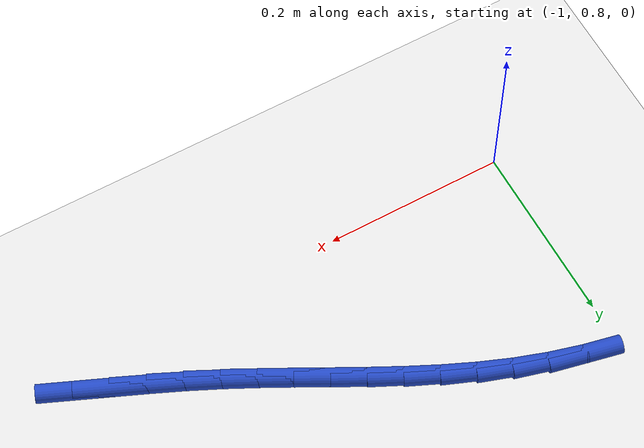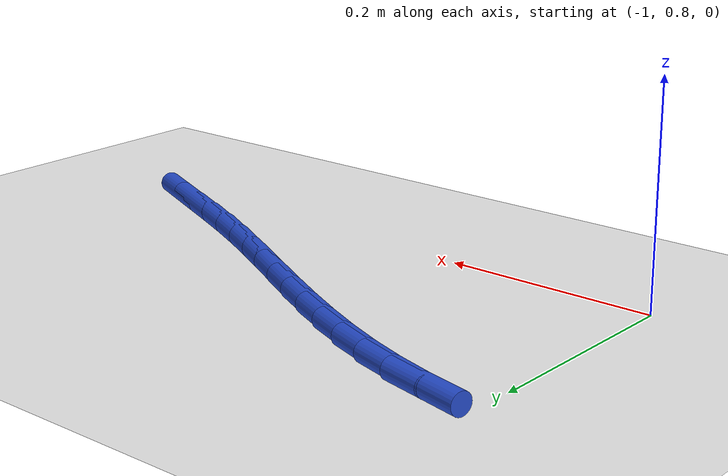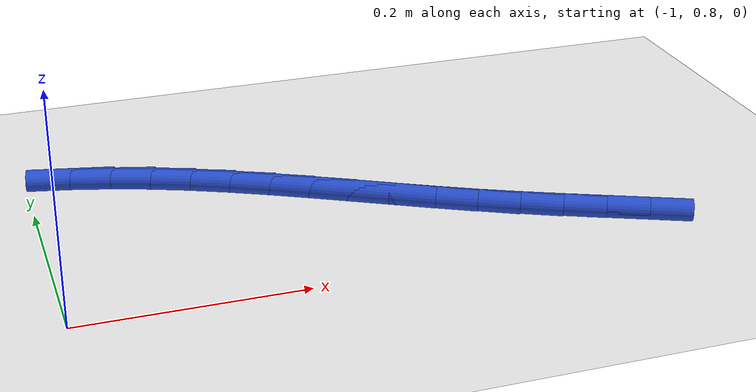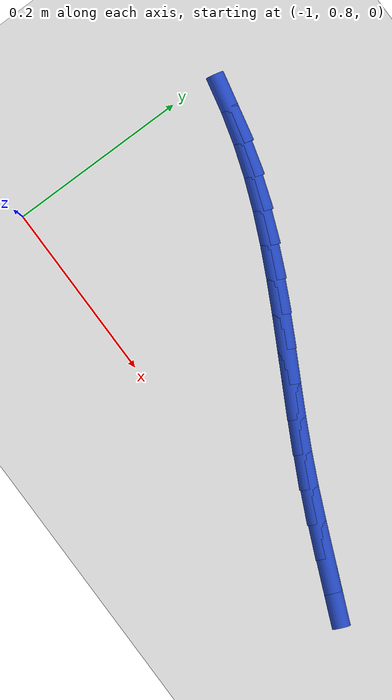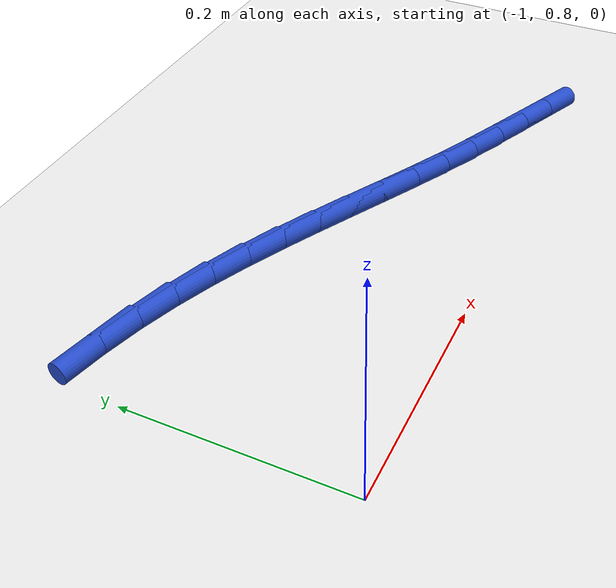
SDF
<sdf version="1.6">
 <world name="default">
  <model name="ground_plane">
   <static>1</static>
   <link name="link">
    <collision name="collision">
     <geometry><plane><normal>0 0 1</normal><size>100 100</size></plane></geometry>
     <surface><friction><ode><mu>100</mu><mu2>50</mu2></ode></friction></surface>
    </collision>
    <visual name="visual">
     <cast_shadows>0</cast_shadows>
     <geometry><plane><normal>0 0 1</normal><size>100 100</size></plane></geometry>
     <material>
      <script><uri>file://media/materials/scripts/gazebo.material</uri><name>Gazebo/WhiteGlow</name></script>
     </material>
    </visual>
   </link>
  </model>
  <model name="line">
   <link name="link_27">
    <pose>-0.48338921874957724 0.8272434487710636 0.01 0 1.57 -0.41203900918055797</pose>
    <collision name="collision">
     <geometry><cylinder><radius>0.01</radius><length>0.08</length></cylinder></geometry>
    </collision>
    <visual name="visual">
     <material>
      <script><name>Gazebo/Blue</name><uri>file://media/materials/scripts/gazebo.material</uri></script>
     </material>
     <geometry><cylinder><radius>0.01</radius><length>0.08</length></cylinder></geometry>
    </visual>
   </link>
   <link name="link_28">
    <pose>-0.5179843008508721 0.8423634904225151 0.01 0 1.57 -0.41233873418005973</pose>
    <collision name="collision">
     <geometry><cylinder><radius>0.01</radius><length>0.08</length></cylinder></geometry>
    </collision>
    <visual name="visual">
     <material>
      <script><name>Gazebo/Blue</name><uri>file://media/materials/scripts/gazebo.material</uri></script>
     </material>
     <geometry><cylinder><radius>0.01</radius><length>0.08</length></cylinder></geometry>
    </visual>
   </link>
   <link name="link_29">
    <pose>-0.5526401096222798 0.8575224461147751 0.01 0 1.57 -0.4245493605819563</pose>
    <collision name="collision">
     <geometry><cylinder><radius>0.01</radius><length>0.08</length></cylinder></geometry>
    </collision>
    <visual name="visual">
     <material>
      <script><name>Gazebo/Blue</name><uri>file://media/materials/scripts/gazebo.material</uri></script>
     </material>
     <geometry><cylinder><radius>0.01</radius><length>0.08</length></cylinder></geometry>
    </visual>
   </link>
   <link name="link_30">
    <pose>-0.5870996790519818 0.8730995608562446 0.01 0 1.57 -0.44835614252573075</pose>
    <collision name="collision">
     <geometry><cylinder><radius>0.01</radius><length>0.08</length></cylinder></geometry>
    </collision>
    <visual name="visual">
     <material>
      <script><name>Gazebo/Blue</name><uri>file://media/materials/scripts/gazebo.material</uri></script>
     </material>
     <geometry><cylinder><radius>0.01</radius><length>0.08</length></cylinder></geometry>
    </visual>
   </link>
   <link name="link_31">
    <pose>-0.6211136347248953 0.8894612678874579 0.01 0 1.57 -0.47380208929581974</pose>
    <collision name="collision">
     <geometry><cylinder><radius>0.01</radius><length>0.08</length></cylinder></geometry>
    </collision>
    <visual name="visual">
     <material>
      <script><name>Gazebo/Blue</name><uri>file://media/materials/scripts/gazebo.material</uri></script>
     </material>
     <geometry><cylinder><radius>0.01</radius><length>0.08</length></cylinder></geometry>
    </visual>
   </link>
   <link name="link_32">
    <pose>-0.6546271841921648 0.90664561907292 0.01 0 1.57 -0.4901666106193181</pose>
    <collision name="collision">
     <geometry><cylinder><radius>0.01</radius><length>0.08</length></cylinder></geometry>
    </collision>
    <visual name="visual">
     <material>
      <script><name>Gazebo/Blue</name><uri>file://media/materials/scripts/gazebo.material</uri></script>
     </material>
     <geometry><cylinder><radius>0.01</radius><length>0.08</length></cylinder></geometry>
    </visual>
   </link>
   <link name="link_33">
    <pose>-0.6877919071691334 0.9243423874691465 0.01 0 1.57 -0.49687722455286093</pose>
    <collision name="collision">
     <geometry><cylinder><radius>0.01</radius><length>0.08</length></cylinder></geometry>
    </collision>
    <visual name="visual">
     <material>
      <script><name>Gazebo/Blue</name><uri>file://media/materials/scripts/gazebo.material</uri></script>
     </material>
     <geometry><cylinder><radius>0.01</radius><length>0.08</length></cylinder></geometry>
    </visual>
   </link>
   <link name="link_34">
    <pose>-0.7207693355659148 0.9422245505607061 0.01 0 1.57 -0.49387856696736715</pose>
    <collision name="collision">
     <geometry><cylinder><radius>0.01</radius><length>0.08</length></cylinder></geometry>
    </collision>
    <visual name="visual">
     <material>
      <script><name>Gazebo/Blue</name><uri>file://media/materials/scripts/gazebo.material</uri></script>
     </material>
     <geometry><cylinder><radius>0.01</radius><length>0.08</length></cylinder></geometry>
    </visual>
   </link>
   <link name="link_35">
    <pose>-0.7537210012926232 0.9599650858321678 0.01 0 1.57 -0.4810981027536319</pose>
    <collision name="collision">
     <geometry><cylinder><radius>0.01</radius><length>0.08</length></cylinder></geometry>
    </collision>
    <visual name="visual">
     <material>
      <script><name>Gazebo/Blue</name><uri>file://media/materials/scripts/gazebo.material</uri></script>
     </material>
     <geometry><cylinder><radius>0.01</radius><length>0.08</length></cylinder></geometry>
    </visual>
   </link>
   <link name="link_36">
    <pose>-0.7868084362593724 0.9772369707681001 0.01 0 1.57 -0.45845445017022957</pose>
    <collision name="collision">
     <geometry><cylinder><radius>0.01</radius><length>0.08</length></cylinder></geometry>
    </collision>
    <visual name="visual">
     <material>
      <script><name>Gazebo/Blue</name><uri>file://media/materials/scripts/gazebo.material</uri></script>
     </material>
     <geometry><cylinder><radius>0.01</radius><length>0.08</length></cylinder></geometry>
    </visual>
   </link>
   <link name="link_37">
    <pose>-0.8201931723762764 0.9937131828530721 0.01 0 1.57 -0.4258944695536662</pose>
    <collision name="collision">
     <geometry><cylinder><radius>0.01</radius><length>0.08</length></cylinder></geometry>
    </collision>
    <visual name="visual">
     <material>
      <script><name>Gazebo/Blue</name><uri>file://media/materials/scripts/gazebo.material</uri></script>
     </material>
     <geometry><cylinder><radius>0.01</radius><length>0.08</length></cylinder></geometry>
    </visual>
   </link>
   <link name="link_38">
    <pose>-0.8540367415534487 1.0090666995716522 0.01 0 1.57 -0.3834601183704096</pose>
    <collision name="collision">
     <geometry><cylinder><radius>0.01</radius><length>0.08</length></cylinder></geometry>
    </collision>
    <visual name="visual">
     <material>
      <script><name>Gazebo/Blue</name><uri>file://media/materials/scripts/gazebo.material</uri></script>
     </material>
     <geometry><cylinder><radius>0.01</radius><length>0.08</length></cylinder></geometry>
    </visual>
   </link>
   <link name="link_39">
    <pose>-0.8885006757010037 1.0229704984084096 0.01 0 1.57 -0.33152147033300483</pose>
    <collision name="collision">
     <geometry><cylinder><radius>0.01</radius><length>0.08</length></cylinder></geometry>
    </collision>
    <visual name="visual">
     <material>
      <script><name>Gazebo/Blue</name><uri>file://media/materials/scripts/gazebo.material</uri></script>
     </material>
     <geometry><cylinder><radius>0.01</radius><length>0.08</length></cylinder></geometry>
    </visual>
   </link>
   <link name="link_40">
    <pose>-0.9237426920301912 1.0351017071870496 0.01 0 1.57 -0.27522252416295173</pose>
    <collision name="collision">
     <geometry><cylinder><radius>0.01</radius><length>0.08</length></cylinder></geometry>
    </collision>
    <visual name="visual">
     <material>
      <script><name>Gazebo/Blue</name><uri>file://media/materials/scripts/gazebo.material</uri></script>
     </material>
     <geometry><cylinder><radius>0.01</radius><length>0.08</length></cylinder></geometry>
    </visual>
   </link>
   <link name="link_41">
    <pose>-0.9597888168328138 1.0452807316141306 0.01 0 1.57 -0.220350970457594</pose>
    <collision name="collision">
     <geometry><cylinder><radius>0.01</radius><length>0.08</length></cylinder></geometry>
    </collision>
    <visual name="visual">
     <material>
      <script><name>Gazebo/Blue</name><uri>file://media/materials/scripts/gazebo.material</uri></script>
     </material>
     <geometry><cylinder><radius>0.01</radius><length>0.08</length></cylinder></geometry>
    </visual>
   </link>
  </model>
 </world>
</sdf>
